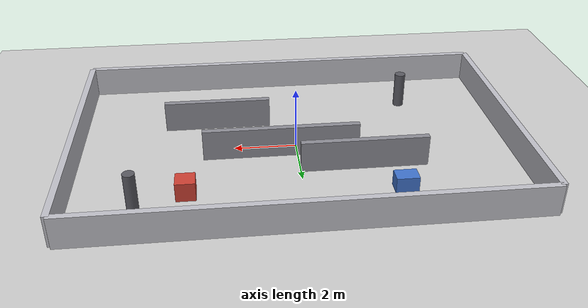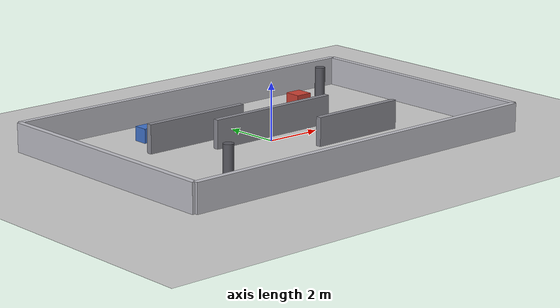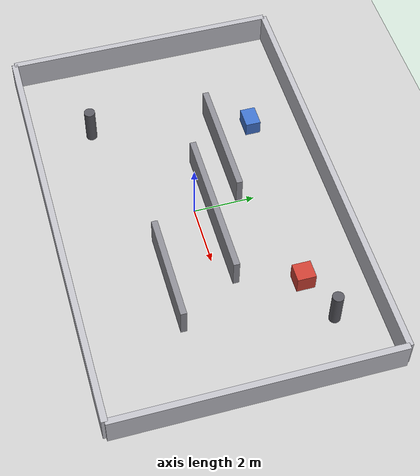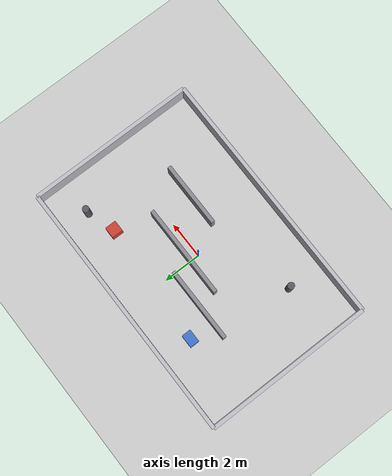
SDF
<?xml version="1.0"?>
<sdf version="1.6">
  <world name="r550_complex_indoor">
    <include>
      <uri>model://ground_plane</uri>
    </include>
    <include>
      <uri>model://sun</uri>
    </include>

    <model name="outer_wall_north">
      <static>true</static>
      <link name="link">
        <collision name="collision">
          <geometry><box><size>14 0.2 1</size></box></geometry>
        </collision>
        <visual name="visual">
          <geometry><box><size>14 0.2 1</size></box></geometry>
          <material><ambient>0.75 0.75 0.78 1</ambient></material>
        </visual>
      </link>
      <pose>0 4.5 0.5 0 0 0</pose>
    </model>

    <model name="outer_wall_south">
      <static>true</static>
      <link name="link">
        <collision name="collision">
          <geometry><box><size>14 0.2 1</size></box></geometry>
        </collision>
        <visual name="visual">
          <geometry><box><size>14 0.2 1</size></box></geometry>
          <material><ambient>0.75 0.75 0.78 1</ambient></material>
        </visual>
      </link>
      <pose>0 -4.5 0.5 0 0 0</pose>
    </model>

    <model name="outer_wall_east">
      <static>true</static>
      <link name="link">
        <collision name="collision">
          <geometry><box><size>0.2 9 1</size></box></geometry>
        </collision>
        <visual name="visual">
          <geometry><box><size>0.2 9 1</size></box></geometry>
          <material><ambient>0.75 0.75 0.78 1</ambient></material>
        </visual>
      </link>
      <pose>7 0 0.5 0 0 0</pose>
    </model>

    <model name="outer_wall_west">
      <static>true</static>
      <link name="link">
        <collision name="collision">
          <geometry><box><size>0.2 9 1</size></box></geometry>
        </collision>
        <visual name="visual">
          <geometry><box><size>0.2 9 1</size></box></geometry>
          <material><ambient>0.75 0.75 0.78 1</ambient></material>
        </visual>
      </link>
      <pose>-7 0 0.5 0 0 0</pose>
    </model>

    <model name="partition_a">
      <static>true</static>
      <link name="link">
        <collision name="collision">
          <geometry><box><size>4 0.2 1</size></box></geometry>
        </collision>
        <visual name="visual">
          <geometry><box><size>4 0.2 1</size></box></geometry>
          <material><ambient>0.55 0.55 0.58 1</ambient></material>
        </visual>
      </link>
      <pose>-2 1.5 0.5 0 0 0</pose>
    </model>

    <model name="partition_b">
      <static>true</static>
      <link name="link">
        <collision name="collision">
          <geometry><box><size>3.5 0.2 1</size></box></geometry>
        </collision>
        <visual name="visual">
          <geometry><box><size>3.5 0.2 1</size></box></geometry>
          <material><ambient>0.55 0.55 0.58 1</ambient></material>
        </visual>
      </link>
      <pose>2.5 -1.5 0.5 0 0 0</pose>
    </model>

    <model name="partition_c">
      <static>true</static>
      <link name="link">
        <collision name="collision">
          <geometry><box><size>0.2 5 1</size></box></geometry>
        </collision>
        <visual name="visual">
          <geometry><box><size>0.2 5 1</size></box></geometry>
          <material><ambient>0.55 0.55 0.58 1</ambient></material>
        </visual>
      </link>
      <pose>0.5 0.5 0.5 0 0 1.57079632679</pose>
    </model>

    <model name="column_1">
      <static>true</static>
      <link name="link">
        <collision name="collision">
          <geometry><cylinder><radius>0.18</radius><length>1.2</length></cylinder></geometry>
        </collision>
        <visual name="visual">
          <geometry><cylinder><radius>0.18</radius><length>1.2</length></cylinder></geometry>
          <material><ambient>0.35 0.35 0.38 1</ambient></material>
        </visual>
      </link>
      <pose>-4 -2.5 0.6 0 0 0</pose>
    </model>

    <model name="column_2">
      <static>true</static>
      <link name="link">
        <collision name="collision">
          <geometry><cylinder><radius>0.18</radius><length>1.2</length></cylinder></geometry>
        </collision>
        <visual name="visual">
          <geometry><cylinder><radius>0.18</radius><length>1.2</length></cylinder></geometry>
          <material><ambient>0.35 0.35 0.38 1</ambient></material>
        </visual>
      </link>
      <pose>5 3 0.6 0 0 0</pose>
    </model>

    <model name="obstacle_box_1">
      <static>true</static>
      <link name="link">
        <collision name="collision">
          <geometry><box><size>0.6 0.6 0.6</size></box></geometry>
        </collision>
        <visual name="visual">
          <geometry><box><size>0.6 0.6 0.6</size></box></geometry>
          <material><ambient>0.8 0.25 0.2 1</ambient></material>
        </visual>
      </link>
      <pose>3.5 2.5 0.3 0 0 0</pose>
    </model>

    <model name="obstacle_box_2">
      <static>true</static>
      <link name="link">
        <collision name="collision">
          <geometry><box><size>0.7 0.5 0.5</size></box></geometry>
        </collision>
        <visual name="visual">
          <geometry><box><size>0.7 0.5 0.5</size></box></geometry>
          <material><ambient>0.25 0.45 0.8 1</ambient></material>
        </visual>
      </link>
      <pose>-3 2.8 0.25 0 0 0</pose>
    </model>
  </world>
</sdf>
